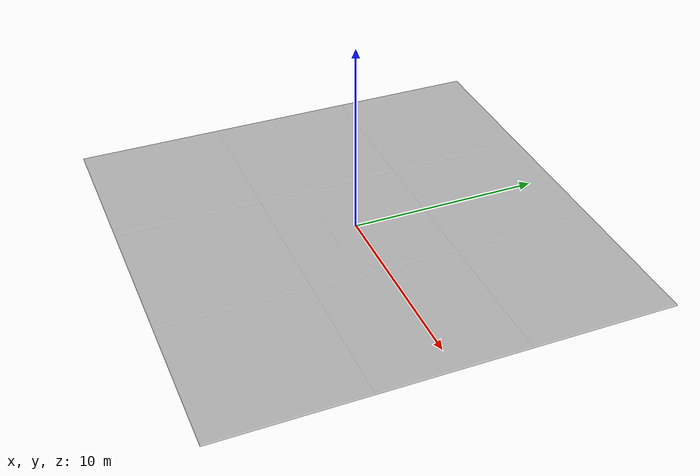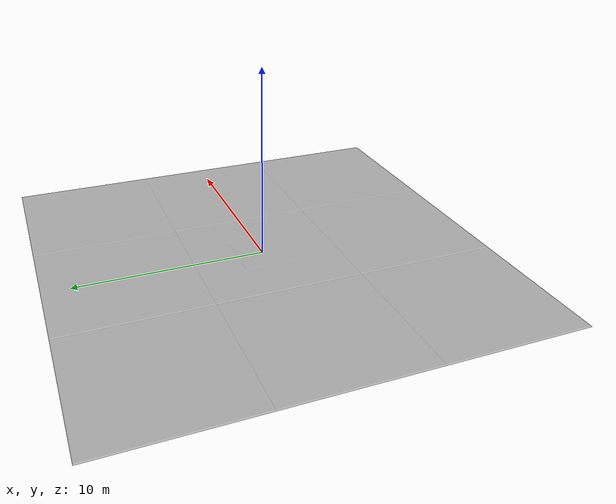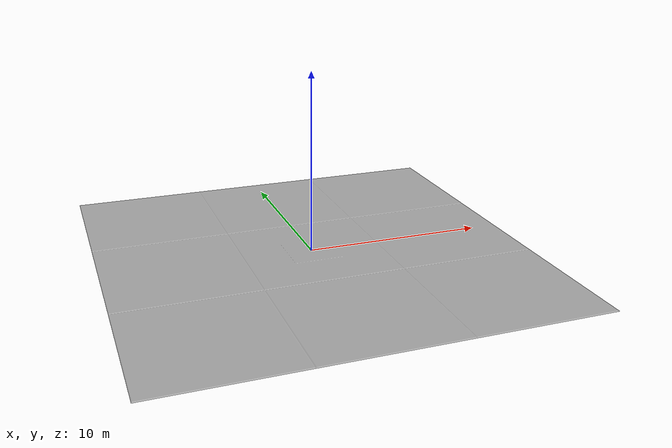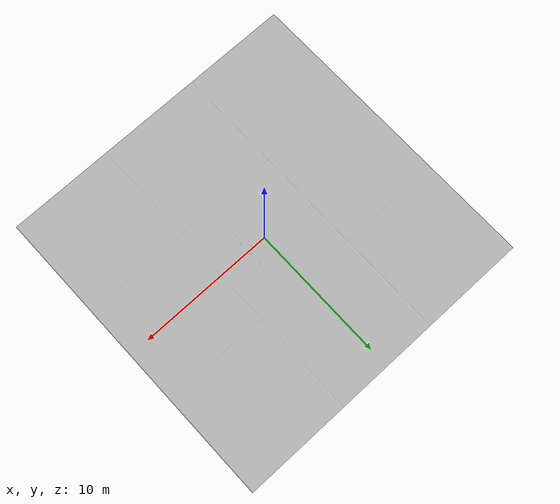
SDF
<?xml version="1.0" ?>
<sdf version="1.5">
  <world name="default">
	<physics type="opensim">
		<opensim>
			<accuracy>0.0001</accuracy>
		</opensim>
	</physics>
    <light name='sun' type='directional'>
      <cast_shadows>1</cast_shadows>
      <pose>-11.82075 -19.38429 17.2198 0 -0 0</pose>
      <diffuse>0.7 0.7 0.7 1</diffuse>
      <specular>0.2 0.2 0.2 1</specular>
      <attenuation>
        <range>1000</range>
        <constant>0.9</constant>
        <linear>0.01</linear>
        <quadratic>0.001</quadratic>
      </attenuation>
      <direction>0.3698 0.4 -0.5</direction>
    </light>
    <model name="ground">
      <static>true</static>
      <link name="link">
        <visual name="visual">
          <cast_shadows>false</cast_shadows>
          <pose>0 0 0 0 -0 0</pose>
          <geometry>
           <mesh>
              <uri>model://empty_world/meshes/emptyworldground.dae</uri>
            </mesh>
          </geometry>
        </visual>
        <collision name="collision">
          <pose>0 0 0.016 0 0 0</pose>
          <geometry>
            <box>
              <size>22.938 22.954 0.016</size>
            </box>
          </geometry>
        </collision>
      </link>
    </model>
    <scene>
      <ambient>0.4 0.4 0.4 1</ambient>
      <background>0.7 0.7 0.7 1</background>
      <shadows>1</shadows>
    </scene>
  </world>
</sdf>
